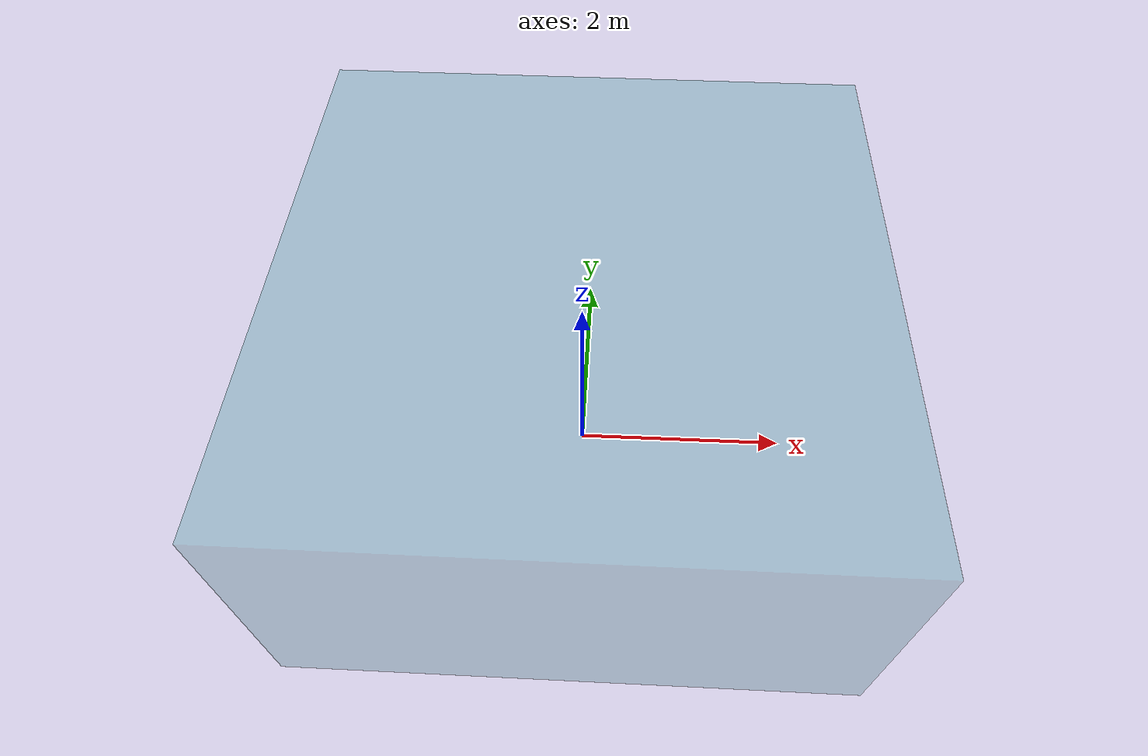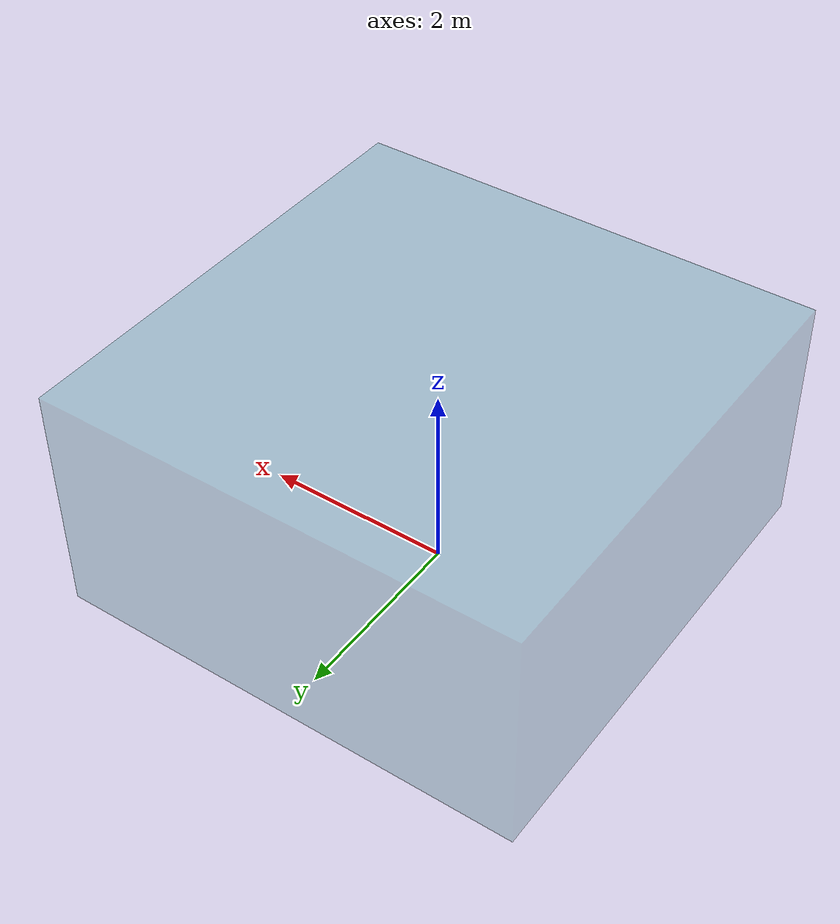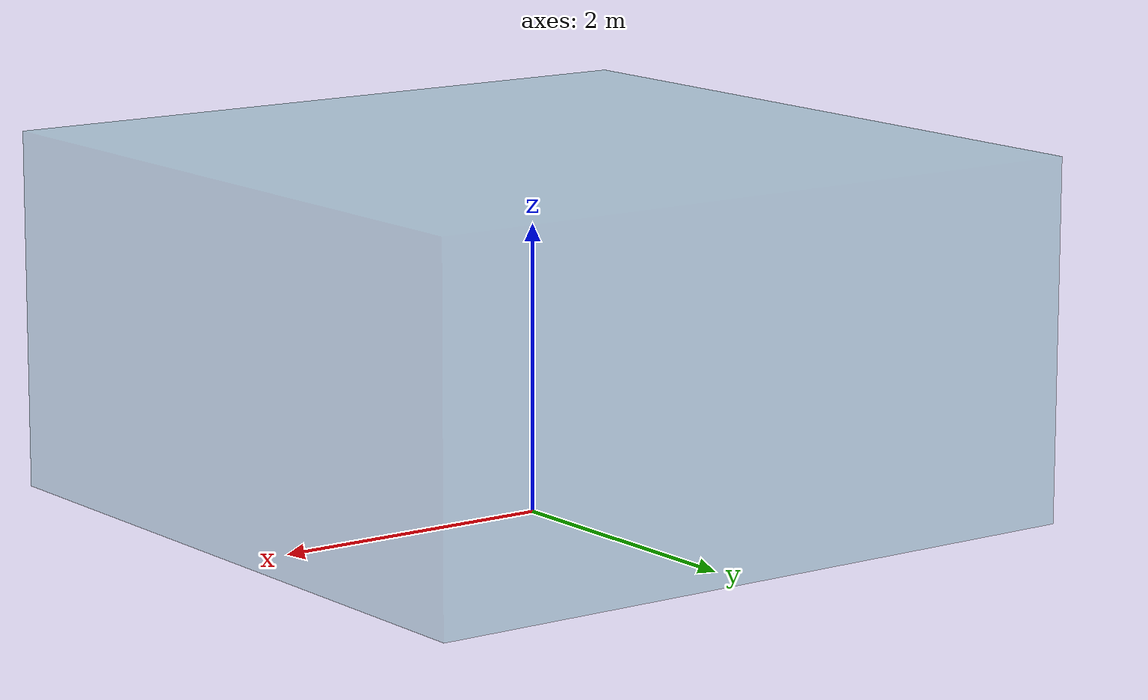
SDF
<?xml version='1.0'?>
<sdf version='1.5'>
  <model name='lab_limits'>
    <link name='link'>
      <pose>0 0 0 0 -0 0</pose>
      <inertial>
        <mass>0.1</mass>
        <inertia>
          <ixx>0.166667</ixx>
          <ixy>0</ixy>
          <ixz>0</ixz>
          <iyy>0.166667</iyy>
          <iyz>0</iyz>
          <izz>0.166667</izz>
        </inertia>
        <pose>0 0 0 0 -0 0</pose>
      </inertial>
      <self_collide>0</self_collide>
      <kinematic>0</kinematic>
      <gravity>1</gravity>
      <visual name='visual'>
        <geometry>
          <box>
            <size>5 5 2.5</size>
          </box>
        </geometry>
        <material>
          <script>
            <name>Gazebo/Grey</name>
            <uri>file://media/materials/scripts/gazebo.material</uri>
          </script>
          <shader type='pixel'>
            <normal_map>__default__</normal_map>
          </shader>
          <ambient>0 0.8 0.6 0</ambient>
          <diffuse>0 0.45 0.45 0</diffuse>
          <specular>1 0 0 0</specular>
          <emissive>0 0 0 1</emissive>
          <lighting>1</lighting>
        </material>
        <pose>0 0 1.3 0 -0 0</pose>
        <cast_shadows>1</cast_shadows>
        <transparency>0.75</transparency>
      </visual>
      <collision name='collision'>
        <laser_retro>0</laser_retro>
        <max_contacts>0</max_contacts>
        <pose>0 0 1.7 0 -0 0</pose>
        <geometry>
          <box>
            <size>1e-06 1e-06 1e-06</size>
          </box>
        </geometry>
        <surface>
          <friction>
            <ode>
              <mu>1</mu>
              <mu2>1</mu2>
              <fdir1>0 0 0</fdir1>
              <slip1>0</slip1>
              <slip2>0</slip2>
            </ode>
            <torsional>
              <coefficient>1</coefficient>
              <patch_radius>0</patch_radius>
              <surface_radius>0</surface_radius>
              <use_patch_radius>1</use_patch_radius>
              <ode>
                <slip>0</slip>
              </ode>
            </torsional>
          </friction>
          <bounce>
            <restitution_coefficient>0</restitution_coefficient>
            <threshold>1e+06</threshold>
          </bounce>
          <contact>
            <collide_without_contact>0</collide_without_contact>
            <collide_without_contact_bitmask>1</collide_without_contact_bitmask>
            <collide_bitmask>1</collide_bitmask>
            <ode>
              <soft_cfm>0</soft_cfm>
              <soft_erp>0.2</soft_erp>
              <kp>1e+13</kp>
              <kd>1</kd>
              <max_vel>0.01</max_vel>
              <min_depth>0</min_depth>
            </ode>
            <bullet>
              <split_impulse>1</split_impulse>
              <split_impulse_penetration_threshold>-0.01</split_impulse_penetration_threshold>
              <soft_cfm>0</soft_cfm>
              <soft_erp>0.2</soft_erp>
              <kp>1e+13</kp>
              <kd>1</kd>
            </bullet>
          </contact>
        </surface>
      </collision>
    </link>
    <static>1</static>
    <allow_auto_disable>1</allow_auto_disable>
  </model>
</sdf>
